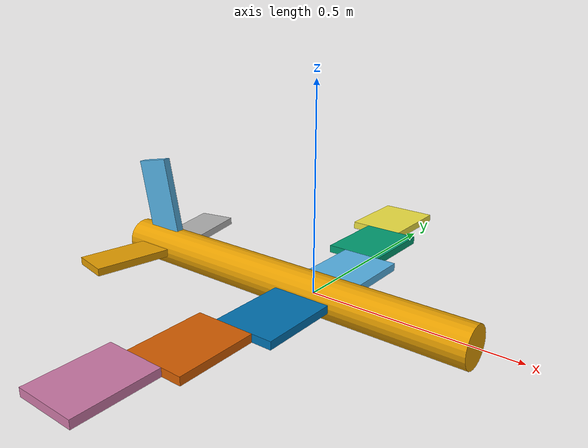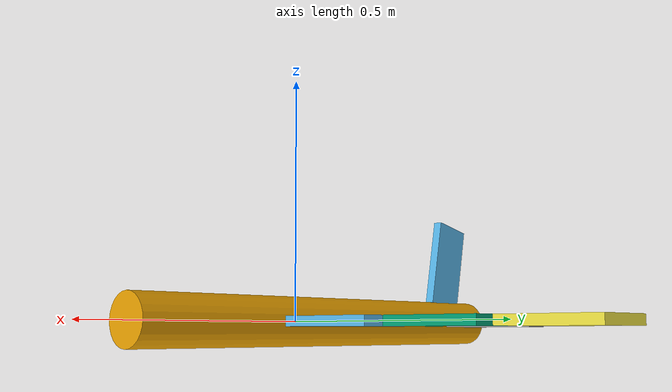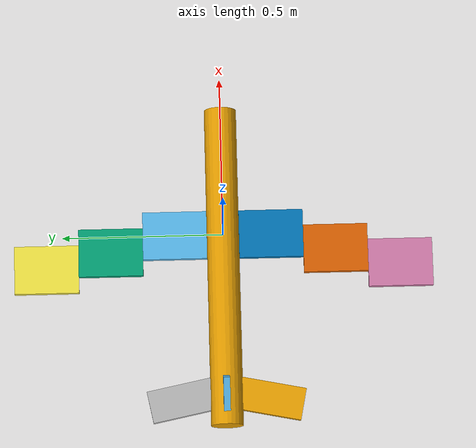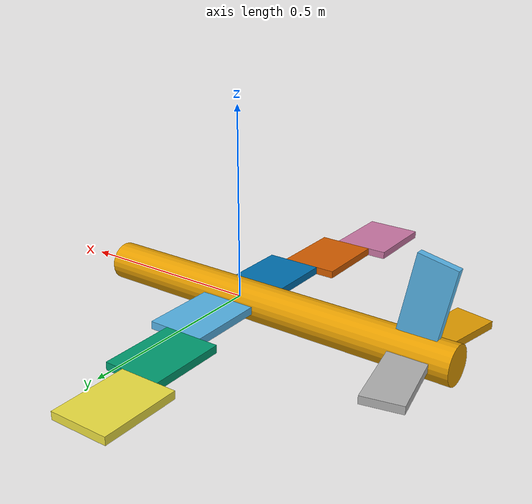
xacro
<?xml version="1.0"?>
<robot name="test">

  <link name="fuselage">
    <visual>
      <geometry>
        <cylinder length="1.0" radius="0.05"/>
      </geometry>
      <origin xyz="-0.1 0 0" rpy="0 1.57 0"/>
    </visual>
    <collision>
      <geometry>
        <cylinder length="1.0" radius="0.05"/>
      </geometry>
      <origin xyz="-0.1 0 0" rpy="0 1.57 0"/>
    </collision>
  </link>

  <link name="wing_left_1">
    <visual>
      <geometry>
        <box size="0.15 0.2 0.02"/>
      </geometry>
      <origin xyz="0 0.1 0" rpy="0 0 0"/>
    </visual>
    <collision>
       <geometry>
        <box size="0.15 0.2 0.02"/>
      </geometry>
      <origin xyz="0 0.1 0" rpy="0 0 0"/>
    </collision>
  </link>

  <link name="wing_left_2">
    <visual>
      <geometry>
        <box size="0.15 0.2 0.02"/>
      </geometry>
      <origin xyz="0 0.1 0" rpy="0 0 0"/>
    </visual>
    <collision>
       <geometry>
        <box size="0.15 0.2 0.02"/>
      </geometry>
      <origin xyz="0 0.1 0" rpy="0 0 0"/>
    </collision>
  </link>

  <link name="wing_left_3">
    <visual>
      <geometry>
        <box size="0.15 0.2 0.02"/>
      </geometry>
      <origin xyz="0 0.1 0" rpy="0 0 0"/>
    </visual>
    <collision>
       <geometry>
        <box size="0.15 0.2 0.02"/>
      </geometry>
      <origin xyz="0 0.1 0" rpy="0 0 0"/>
    </collision>
  </link>

  <link name="wing_right_1">
    <visual>
      <geometry>
        <box size="0.15 0.2 0.02"/>
      </geometry>
      <origin xyz="0 -0.1 0" rpy="0 0 0"/>
    </visual>
    <collision>
       <geometry>
        <box size="0.15 0.2 0.02"/>
      </geometry>
      <origin xyz="0 -0.1 0" rpy="0 0 0"/>
    </collision>
  </link>

  <link name="wing_right_2">
    <visual>
      <geometry>
        <box size="0.15 0.2 0.02"/>
      </geometry>
      <origin xyz="0 -0.1 0" rpy="0 0 0"/>
    </visual>
    <collision>
       <geometry>
        <box size="0.15 0.2 0.02"/>
      </geometry>
      <origin xyz="0 -0.1 0" rpy="0 0 0"/>
    </collision>
  </link>

  <link name="wing_right_3">
    <visual>
      <geometry>
        <box size="0.15 0.2 0.02"/>
      </geometry>
      <origin xyz="0 -0.1 0" rpy="0 0 0"/>
    </visual>
    <collision>
       <geometry>
        <box size="0.15 0.2 0.02"/>
      </geometry>
      <origin xyz="0 -0.1 0" rpy="0 0 0"/>
    </collision>
  </link>

  <link name="elevator_left">
    <visual>
      <geometry>
        <box size="0.1 0.2 0.02"/>
      </geometry>
      <origin xyz="0 0.1 0" rpy="0 0 0"/>
    </visual>
    <collision>
       <geometry>
        <box size="0.1 0.2 0.02"/>
      </geometry>
      <origin xyz="0 0.1 0" rpy="0 0 0"/>
    </collision>
  </link>

  <link name="elevator_right">
    <visual>
      <geometry>
        <box size="0.1 0.2 0.02"/>
      </geometry>
      <origin xyz="0 -0.1 0" rpy="0 0 0"/>
    </visual>
    <collision>
       <geometry>
        <box size="0.1 0.2 0.02"/>
      </geometry>
      <origin xyz="0 -0.1 0" rpy="0 0 0"/>
    </collision>
  </link>

  <link name="rudder">
    <visual>
      <geometry>
        <box size="0.1 0.2 0.02"/>
      </geometry>
      <origin xyz="0 0 0.1" rpy="1.57 0 0"/>
    </visual>
    <collision>
       <geometry>
        <box size="0.1 0.2 0.02"/>
      </geometry>
      <origin xyz="0 0 0.1" rpy="1.57 0 0"/>
    </collision>
  </link>

  <joint name="wing_joint_l1" type="fixed">
    <parent link="fuselage"/>
    <child link="wing_left_1"/>
    <origin xyz="0 0.05 0"/>
  </joint>

  <joint name="wing_joint_l2" type="fixed">
    <parent link="wing_left_1"/>
    <child link="wing_left_2"/>
    <origin xyz="-0.05 0.2 0"/>
  </joint>

  <joint name="wing_joint_l3" type="fixed">
    <parent link="wing_left_2"/>
    <child link="wing_left_3"/>
    <origin xyz="-0.05 0.2 0"/>
  </joint>

  <joint name="wing_joint_r1" type="fixed">
    <parent link="fuselage"/>
    <child link="wing_right_1"/>
    <origin xyz="0 -0.05 0"/>
  </joint>

  <joint name="wing_joint_r2" type="fixed">
    <parent link="wing_right_1"/>
    <child link="wing_right_2"/>
    <origin xyz="-0.05 -0.2 0"/>
  </joint>

  <joint name="wing_joint_r3" type="fixed">
    <parent link="wing_right_2"/>
    <child link="wing_right_3"/>
    <origin xyz="-0.05 -0.2 0"/>
  </joint>

  <joint name="elevator_joint_l1" type="fixed">
    <parent link="fuselage"/>
    <child link="elevator_left"/>
    <origin xyz="-0.5 0.04 0" rpy="0 0 0.2"/>
  </joint>

  <joint name="elevator_joint_r1" type="fixed">
    <parent link="fuselage"/>
    <child link="elevator_right"/>
    <origin xyz="-0.5 -0.04 0" rpy="0 0 -0.2"/>
  </joint>

  <joint name="rudder_joint" type="fixed">
    <parent link="fuselage"/>
    <child link="rudder"/>
    <origin xyz="-0.5 0.0 0.04" rpy="0 -0.2 0"/>
  </joint>

</robot>
